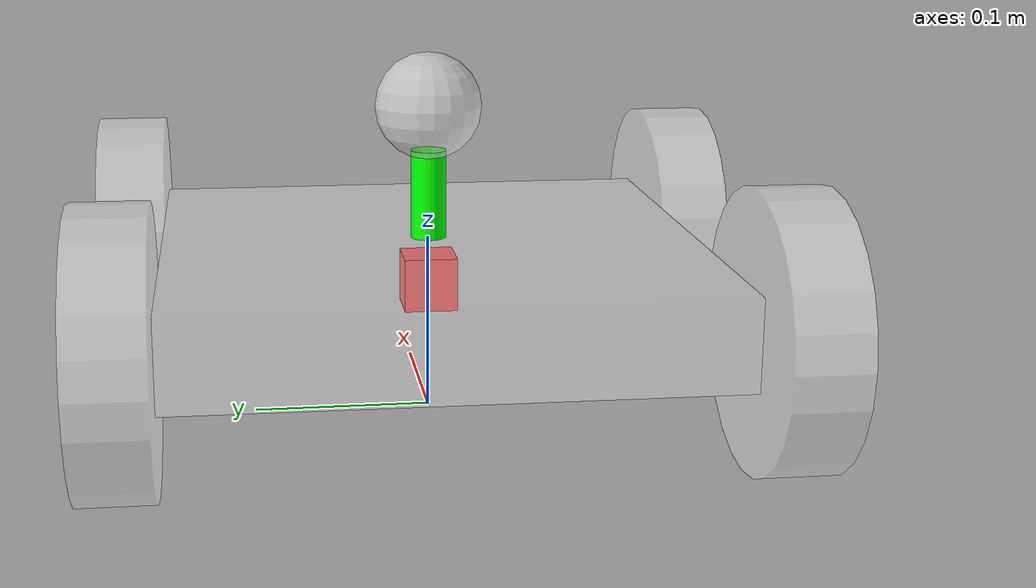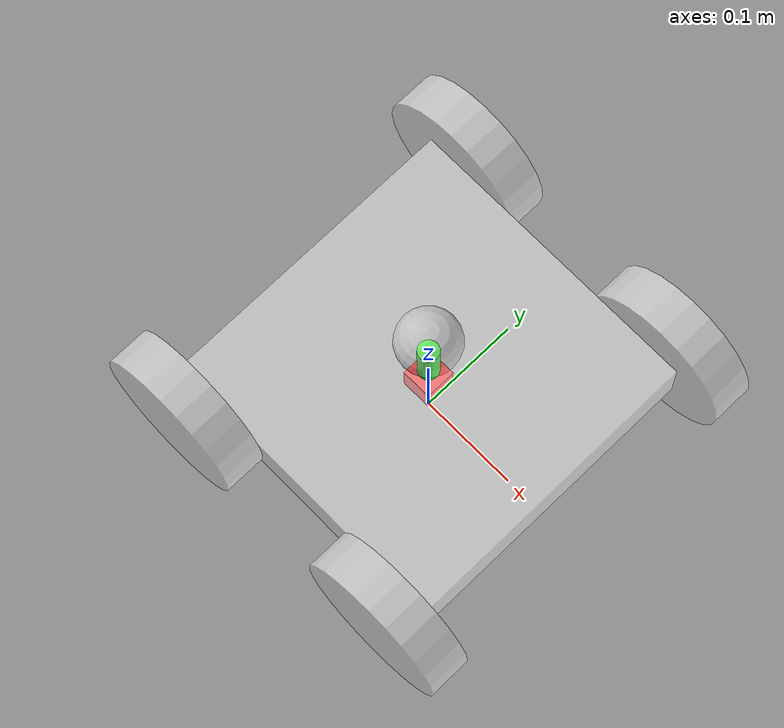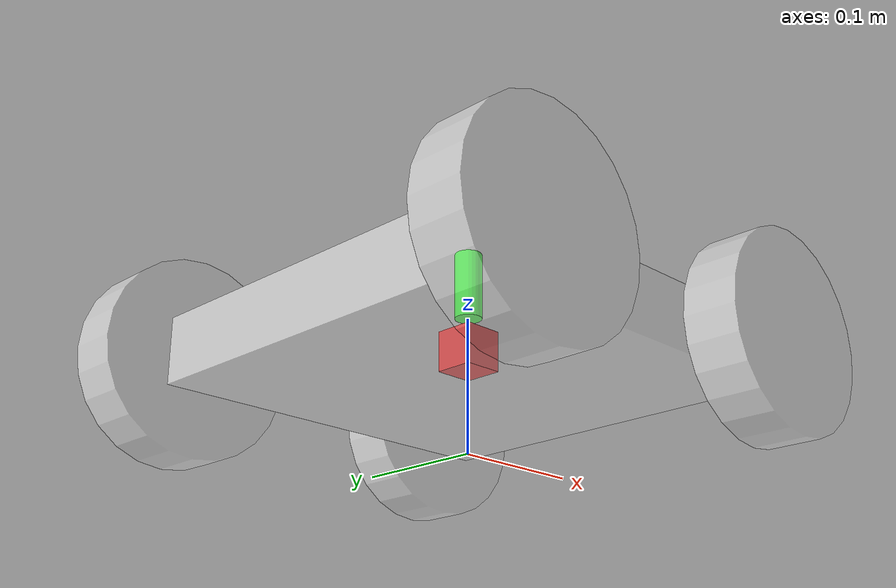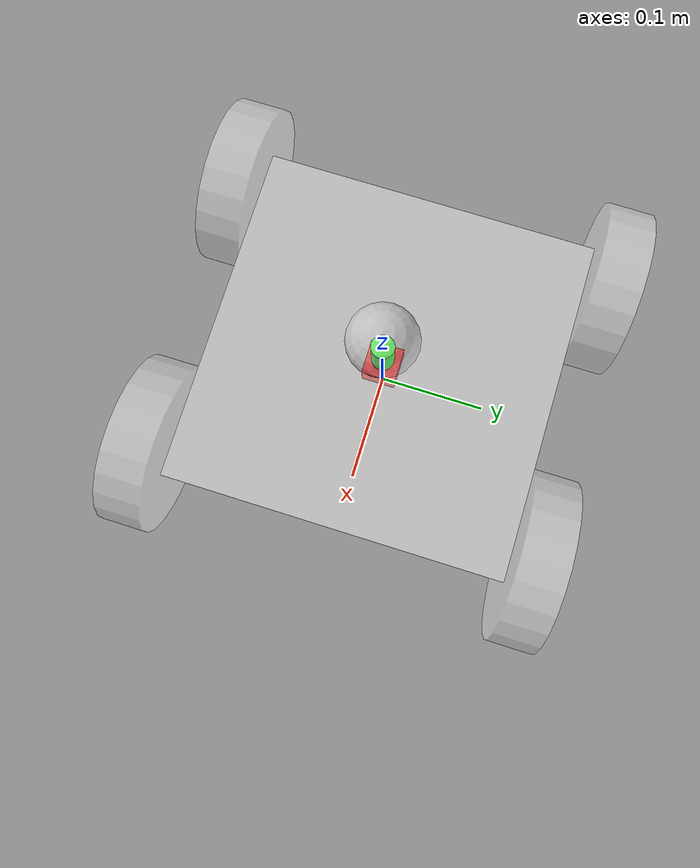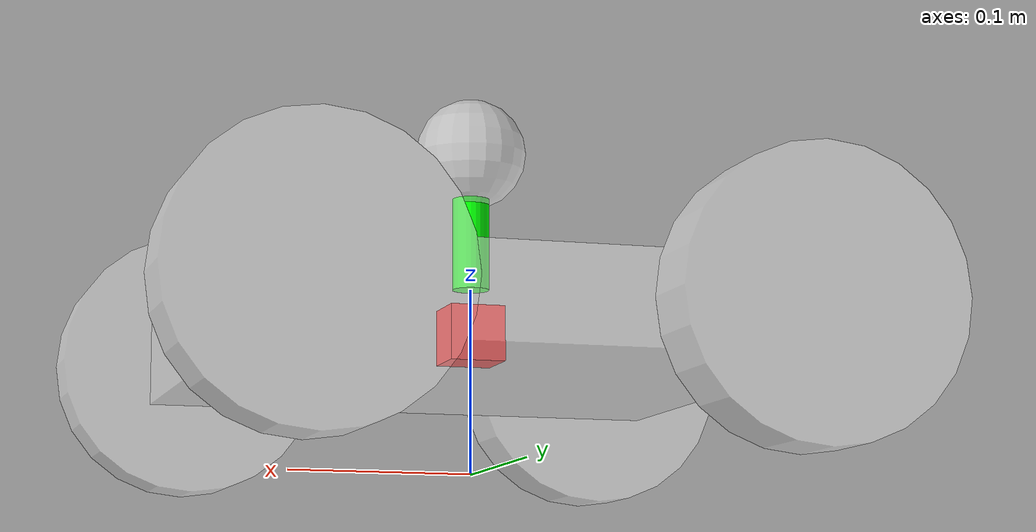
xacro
<?xml version="1.0"?>
<robot xmlns:xacro="http://ros.org/wiki/xacro" name="car">
    <xacro:include filename="base.urdf.xacro"/>
    <xacro:include filename="sensor/scan.urdf.xacro"/>
    <xacro:include filename="sensor/imu.urdf.xacro"/>
    <xacro:include filename="wheel/wheel.urdf.xacro"/>

    <xacro:base_xacro x="0.3" y="0.3" z="0.05" r="0.075"/>
    <xacro:scan scan_name="laser"/>
    <xacro:imu imu_name="gyro_link"/>
    <xacro:wheel wheel_name="wheel_1" xyz="0.125 0.17 0.0" axis_xyz="0.0 1.0 0.0" rpy="1.57079 0.0 0.0"/>
    <xacro:wheel wheel_name="wheel_2" xyz="0.125 -0.17 0.0" axis_xyz="0.0 1.0 0.0" rpy="1.57079 0.0 0.0"/>
    <xacro:wheel wheel_name="wheel_3" xyz="-0.125 0.17 0.0" axis_xyz="0.0 1.0 0.0" rpy="1.57079 0.0 0.0"/>
    <xacro:wheel wheel_name="wheel_4" xyz="-0.125 -0.17 0.0" axis_xyz="0.0 1.0 0.0" rpy="1.57079 0.0 0.0"/>
</robot>

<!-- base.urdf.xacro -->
<robot xmlns:xacro="http://ros.org/wiki/xacro">
    <xacro:include filename="yuan.urdf.xacro"/>

    <xacro:macro name="base_xacro" params="x y z r">
        <link name="base_footprint"/>

        <link name="base_link">
            <xacro:box_visual x="${x}" y="${y}" z="${z}"/>
            <xacro:box_collision x="${x/2}" y="${y/2}" z="${z/2}"/>
            <xacro:box_inertia m="1.0" x="${x/2}" y="${y/2}" z="${z/2}"/>
        </link>

        <joint name="joint_first" type="fixed">
            <parent link="base_footprint"/>
            <child link="base_link"/>
            <origin xyz="0.0 0.0 ${r}" rpy="0.0 0.0 0.0"/>
        </joint>
    </xacro:macro>
</robot>

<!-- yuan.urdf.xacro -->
<robot xmlns:xacro="http://ros.org/wiki/xacro">
    <!-- 视觉 -->
    <!-- 方形 -->
    <xacro:macro name="box_visual" params="x y z rpy:='0 0.0 0.0'">
        <visual>
            <origin xyz="0.0 0.0 0.0" rpy="${rpy}"/>
            <geometry>
                <box size="${x} ${y} ${z}"/>
            </geometry>
            <material name="white">
                <color rgba="1.0 1.0 1.0 0.5"/>
            </material>
        </visual>
    </xacro:macro>
    <!-- 圆柱 -->
    <xacro:macro name="cylinder_visual" params="r h rpy:='0.0 0.0 0.0'">
        <visual>
            <origin xyz="0.0 0.0 0.0" rpy="${rpy}"/>
            <geometry>
                <cylinder radius="${r}" length="${h}"/>
            </geometry>
            <material name="white">
                <color rgba="1.0 1.0 1.0 0.5"/>
            </material>
        </visual>
    </xacro:macro>
    <xacro:macro name="sphere_visual" params="r rpy:='0.0 0.0 0.0'">
        <visual>
            <origin xyz="0.0 0.0 0.0" rpy="${rpy}"/>
            <geometry>
                <sphere radius="${r}"/>
            </geometry>
            <material name="white">
                <color rgba="1.0 1.0 1.0 0.5"/>
            </material>
        </visual>
    </xacro:macro>

    <!-- 碰撞 -->
    <!-- 方形 -->
    <xacro:macro name="box_collision" params="x y z rpy:='0.0 0.0 0.0'">
        <collision>
            <origin xyz="0.0 0.0 0.0" rpy="${rpy}"/>
            <geometry>
                <box size="${x} ${y} ${z}"/>
            </geometry>
        </collision>
    </xacro:macro>
    <!-- 圆柱 -->
    <xacro:macro name="cylinder_collision" params="r h rpy:='0.0 0.0 0.0'">
        <collision>
            <origin xyz="0.0 0.0 0.0" rpy="${rpy}"/>
            <geometry>
                <cylinder radius="${r}" length="${h}"/>
            </geometry>
        </collision>
    </xacro:macro>
    <xacro:macro name="sphere_collision" params="r rpy:='0.0 0.0 0.0'">
        <collision>
            <origin xyz="0.0 0.0 0.0" rpy="${rpy}"/>
            <geometry>
                <sphere radius="${r}"/>
            </geometry>
        </collision>
    </xacro:macro>

    <!-- 惯性 -->
    <!-- 方形 -->
    <xacro:macro name="box_inertia" params="m x y z rpy:='0.0 0.0 0.0'">
        <inertial>
            <origin xyz="0.0 0.0 0.0" rpy="${rpy}"/>
            <mass value="${m}" />
            <inertia ixx="${(m/12) * (y*y + z*z)}" ixy="0.0" ixz="0.0" iyy="${(m/12) * (x*x + z*z)}" iyz="0.0" izz="${(m/12) * (x*x + y*y)}" />
        </inertial>
    </xacro:macro>
    <!-- 圆柱 -->
    <xacro:macro name="cylinder_inertia" params="m r h rpy:='0.0 0.0 0.0'">
        <inertial>
            <origin xyz="0.0 0.0 0.0" rpy="${rpy}"/>
            <mass value="${m}" />
            <inertia ixx="${(m/12) * (3*r*r + h*h)}" ixy="0" ixz="0" iyy="${(m/12) * (3*r*r + h*h)}" iyz="0" izz="${(m/2) * (r*r)}" />
        </inertial>
    </xacro:macro>
    <xacro:macro name="sphere_inertia" params="m r rpy:='0.0 0.0 0.0'">
        <inertial>
            <origin xyz="0.0 0.0 0.0" rpy="${rpy}"/>
            <mass value="${m}" />
            <inertia ixx="${(2/5) * m * (r*r)}" ixy="0.0" ixz="0.0" iyy="${(2/5) * m * (r*r)}" iyz="0.0" izz="${(2/5) * m * (r*r)}" />
        </inertial>
    </xacro:macro>

</robot>

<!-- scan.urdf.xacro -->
<robot xmlns:xacro="http://ros.org/wiki/xacro">
    <xacro:include filename="../yuan.urdf.xacro"/>

    <xacro:macro name="scan" params="scan_name">
        <link name="${scan_name}">
            <xacro:sphere_visual r="0.03"/>
            <xacro:sphere_collision r="0.03"/>
        </link>

        <link name="${scan_name}_platform">
            <visual>
                <origin xyz="0.0 0.0 0.0"/>
                <geometry>
                    <cylinder radius="0.01" length="0.05"/>
                </geometry>
                <material name="green">
                    <color rgba="0.0 1.0 0.0 1.0"/>
                </material>
            </visual>
            <xacro:cylinder_collision r="0.01" h="0.01"/>
        </link>

        <joint name="${scan_name}_platform_joint" type="fixed">
            <parent link="base_link"/>
            <child link="${scan_name}_platform"/>
            <origin xyz="0.0 0.0 0.05" rpy="0.0 0.0 0.0"/>
        </joint>

        <joint name="${scan_name}_joint" type="fixed">
            <parent link="${scan_name}_platform"/>
            <child link="${scan_name}"/>
            <origin xyz="0.0 0.0 0.05" rpy="0.0 0.0 0.0"/>
        </joint>
    </xacro:macro>
</robot>

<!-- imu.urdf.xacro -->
<robot xmlns:xacro="http://ros.org/wiki/xacro">
    <xacro:include filename="../yuan.urdf.xacro"/>

    <xacro:macro name="imu" params="imu_name">
        <link name="${imu_name}">
            <visual>
                <origin xyz="0.0 0.0 0.0"/>
                <geometry>
                    <box size="0.03 0.03 0.03"/>
                </geometry>
                <material name="red">
                    <color rgba="1.0 0.0 0.0 1.0"/>
                </material>
            </visual>
            <xacro:box_collision x="0.03" y="0.03" z="0.03"/>
        </link>

        <joint name="${imu_name}_joint" type="fixed">
            <parent link="base_link"/>
            <child link="${imu_name}"/>
            <origin xyz="0.0 0.0 0.0" rpy="0.0 0.0 0.0"/>
        </joint>
    </xacro:macro>
</robot>

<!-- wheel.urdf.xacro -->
<robot xmlns:xacro="http://ros.org/wiki/xacro">
    <xacro:include filename="../yuan.urdf.xacro"/>

    <xacro:macro name="wheel" params="wheel_name xyz axis_xyz rpy:='0 0.0 0.0'">
        <link name="${wheel_name}_link">
            <xacro:cylinder_visual r="0.075" h="0.04" rpy="${rpy}"/>
            <xacro:cylinder_collision r="0.075" h="0.04" rpy="${rpy}"/>
        </link>

        <joint name="${wheel_name}_joint" type="continuous">
            <parent link="base_link"/>
            <child link="${wheel_name}_link"/>
            <origin xyz="${xyz}" rpy="0.0 0.0 0.0"/>
            <axis xyz="${axis_xyz}"/>
        </joint>
    </xacro:macro>
</robot>
